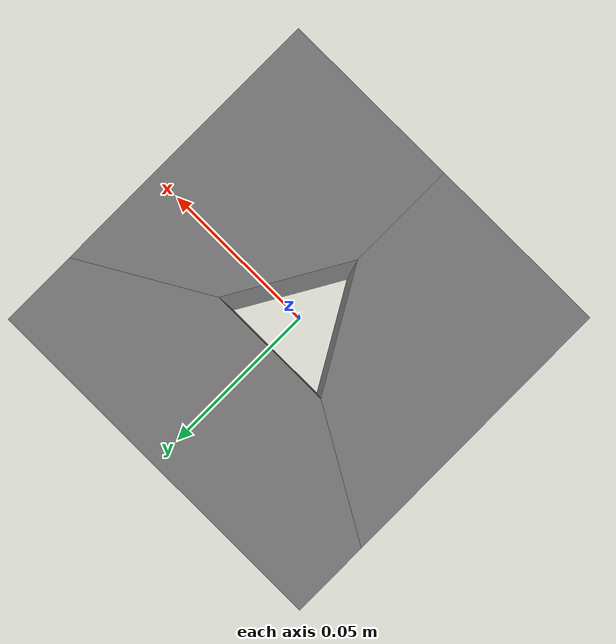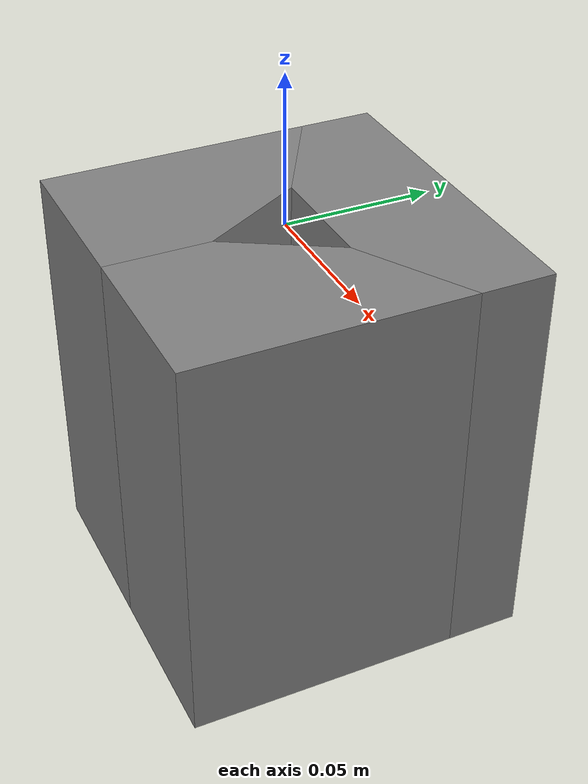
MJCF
<mujoco model="hole">
  <default>
    <default class="collision">
      <geom group="0" type="mesh" solimp="0.9 0.95 0.001 0.5 2" density="100000" solref=".004 1" condim="6"/>
    </default>
  </default>
  <asset>
    <texture file="../textures/red-wood.png" type="cube" name="red-wood" />
    <material name="plate_mat" texture="red-wood" texrepeat="3 3" specular="0.4" shininess="0.1" />
    <mesh refquat="0.7071 0 0 -0.7071" file="meshes/guriguri-large-triangle-hole/Body10.stl" name="hole_collision_top"/>
    <mesh refquat="0.7071 0 0 -0.7071" file="meshes/guriguri-large-triangle-hole/Body11.stl" name="hole_collision_left"/>
    <mesh refquat="0.7071 0 0 -0.7071" file="meshes/guriguri-large-triangle-hole/Body12.stl" name="hole_collision_bottom"/>
  </asset>
  <worldbody>
    <body>
      <body name="object" pos="0 0 0">
        <geom mesh="hole_collision_top" class="collision" />
        <geom mesh="hole_collision_left" class="collision" />
        <geom mesh="hole_collision_bottom" class="collision" />
      </body>
      <site rgba="0 0 0 0" size="0.005" pos="0 0 -0.14" name="bottom_site"/>
      <site rgba="0 0 0 0" size="0.005" pos="0 0 0.00" name="top_site"/>
      <site rgba="0 0 0 0" size="0.005" pos="0.06 0.06 0" name="horizontal_radius_site"/>

    </body>
  </worldbody>
</mujoco>
